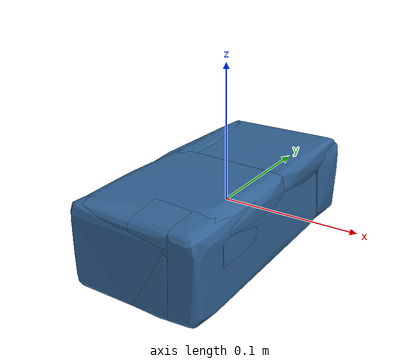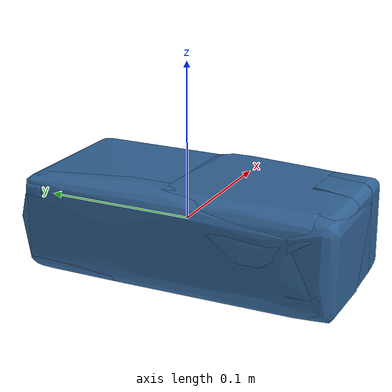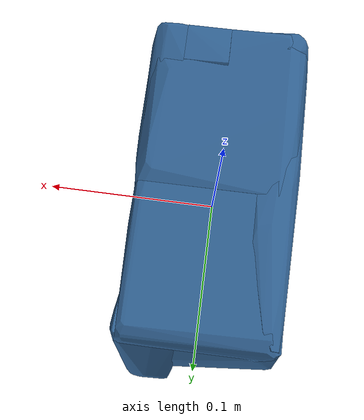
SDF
<?xml version='1.0' encoding='UTF-8'?>
<!-- This SDF was autogenerated by obj_to_drake_sdf.py -->
<sdf version="1.7">
  <model name="chicken_broth">
    <link name="chicken_broth">
      <inertial>
        <pose>0 0 0 0 0 0</pose>
        <mass>0.05</mass>
        <inertia>
          <ixx>0.0001963192</ixx>
          <iyy>6.5404985e-05</iyy>
          <izz>0.00022122943</izz>
          <ixy>-2.8760481e-07</ixy>
          <ixz>4.9587641e-07</ixz>
          <iyz>2.6570415e-06</iyz>
        </inertia>
      </inertial>
      <visual name="convex_0">
        <pose>0 0 0 0 0 0</pose>
        <geometry>
          <mesh>
            <uri>chicken_broth_convex_0.obj</uri>
          </mesh>
        </geometry>
        <material>
          <diffuse>0.19607843137254902 0.39215686274509803 0.5882352941176471 1</diffuse>
        </material>
      </visual>
      <collision name="convex_0_volume">
        <pose>0 0 0 0 0 0</pose>
        <geometry>
          <mesh>
            <uri>chicken_broth_convex_0.obj</uri>
          </mesh>
        </geometry>
        <drake:proximity_properties xmlns:drake="uri:drake">
          <drake:compliant_hydroelastic/>
          <drake:hydroelastic_modulus> 3.0e7 </drake:hydroelastic_modulus>
          <drake:mesh_resolution_hint> 0.02 </drake:mesh_resolution_hint>
          <drake:hunt_crossley_dissipation>10</drake:hunt_crossley_dissipation>
          <drake:mu_dynamic>0.3</drake:mu_dynamic>
        </drake:proximity_properties>
      </collision>
      <visual name="convex_1">
        <pose>0 0 0 0 0 0</pose>
        <geometry>
          <mesh>
            <uri>chicken_broth_convex_1.obj</uri>
          </mesh>
        </geometry>
        <material>
          <diffuse>0.19607843137254902 0.39215686274509803 0.5882352941176471 1</diffuse>
        </material>
      </visual>
      <collision name="convex_1_volume">
        <pose>0 0 0 0 0 0</pose>
        <geometry>
          <mesh>
            <uri>chicken_broth_convex_1.obj</uri>
          </mesh>
        </geometry>
        <drake:proximity_properties xmlns:drake="uri:drake">
          <drake:compliant_hydroelastic/>
          <drake:hydroelastic_modulus> 3.0e7 </drake:hydroelastic_modulus>
          <drake:mesh_resolution_hint> 0.02 </drake:mesh_resolution_hint>
          <drake:hunt_crossley_dissipation>10</drake:hunt_crossley_dissipation>
          <drake:mu_dynamic>0.3</drake:mu_dynamic>
        </drake:proximity_properties>
      </collision>
      <visual name="convex_2">
        <pose>0 0 0 0 0 0</pose>
        <geometry>
          <mesh>
            <uri>chicken_broth_convex_2.obj</uri>
          </mesh>
        </geometry>
        <material>
          <diffuse>0.19607843137254902 0.39215686274509803 0.5882352941176471 1</diffuse>
        </material>
      </visual>
      <collision name="convex_2_volume">
        <pose>0 0 0 0 0 0</pose>
        <geometry>
          <mesh>
            <uri>chicken_broth_convex_2.obj</uri>
          </mesh>
        </geometry>
        <drake:proximity_properties xmlns:drake="uri:drake">
          <drake:compliant_hydroelastic/>
          <drake:hydroelastic_modulus> 3.0e7 </drake:hydroelastic_modulus>
          <drake:mesh_resolution_hint> 0.02 </drake:mesh_resolution_hint>
          <drake:hunt_crossley_dissipation>10</drake:hunt_crossley_dissipation>
          <drake:mu_dynamic>0.3</drake:mu_dynamic>
        </drake:proximity_properties>
      </collision>
      <visual name="convex_3">
        <pose>0 0 0 0 0 0</pose>
        <geometry>
          <mesh>
            <uri>chicken_broth_convex_3.obj</uri>
          </mesh>
        </geometry>
        <material>
          <diffuse>0.19607843137254902 0.39215686274509803 0.5882352941176471 1</diffuse>
        </material>
      </visual>
      <collision name="convex_3_volume">
        <pose>0 0 0 0 0 0</pose>
        <geometry>
          <mesh>
            <uri>chicken_broth_convex_3.obj</uri>
          </mesh>
        </geometry>
        <drake:proximity_properties xmlns:drake="uri:drake">
          <drake:compliant_hydroelastic/>
          <drake:hydroelastic_modulus> 3.0e7 </drake:hydroelastic_modulus>
          <drake:mesh_resolution_hint> 0.02 </drake:mesh_resolution_hint>
          <drake:hunt_crossley_dissipation>10</drake:hunt_crossley_dissipation>
          <drake:mu_dynamic>0.3</drake:mu_dynamic>
        </drake:proximity_properties>
      </collision>
      <visual name="convex_4">
        <pose>0 0 0 0 0 0</pose>
        <geometry>
          <mesh>
            <uri>chicken_broth_convex_4.obj</uri>
          </mesh>
        </geometry>
        <material>
          <diffuse>0.19607843137254902 0.39215686274509803 0.5882352941176471 1</diffuse>
        </material>
      </visual>
      <collision name="convex_4_volume">
        <pose>0 0 0 0 0 0</pose>
        <geometry>
          <mesh>
            <uri>chicken_broth_convex_4.obj</uri>
          </mesh>
        </geometry>
        <drake:proximity_properties xmlns:drake="uri:drake">
          <drake:compliant_hydroelastic/>
          <drake:hydroelastic_modulus> 3.0e7 </drake:hydroelastic_modulus>
          <drake:mesh_resolution_hint> 0.02 </drake:mesh_resolution_hint>
          <drake:hunt_crossley_dissipation>10</drake:hunt_crossley_dissipation>
          <drake:mu_dynamic>0.3</drake:mu_dynamic>
        </drake:proximity_properties>
      </collision>
      <visual name="convex_5">
        <pose>0 0 0 0 0 0</pose>
        <geometry>
          <mesh>
            <uri>chicken_broth_convex_5.obj</uri>
          </mesh>
        </geometry>
        <material>
          <diffuse>0.19607843137254902 0.39215686274509803 0.5882352941176471 1</diffuse>
        </material>
      </visual>
      <collision name="convex_5_volume">
        <pose>0 0 0 0 0 0</pose>
        <geometry>
          <mesh>
            <uri>chicken_broth_convex_5.obj</uri>
          </mesh>
        </geometry>
        <drake:proximity_properties xmlns:drake="uri:drake">
          <drake:compliant_hydroelastic/>
          <drake:hydroelastic_modulus> 3.0e7 </drake:hydroelastic_modulus>
          <drake:mesh_resolution_hint> 0.02 </drake:mesh_resolution_hint>
          <drake:hunt_crossley_dissipation>10</drake:hunt_crossley_dissipation>
          <drake:mu_dynamic>0.3</drake:mu_dynamic>
        </drake:proximity_properties>
      </collision>
      <visual name="convex_6">
        <pose>0 0 0 0 0 0</pose>
        <geometry>
          <mesh>
            <uri>chicken_broth_convex_6.obj</uri>
          </mesh>
        </geometry>
        <material>
          <diffuse>0.19607843137254902 0.39215686274509803 0.5882352941176471 1</diffuse>
        </material>
      </visual>
      <collision name="convex_6_volume">
        <pose>0 0 0 0 0 0</pose>
        <geometry>
          <mesh>
            <uri>chicken_broth_convex_6.obj</uri>
          </mesh>
        </geometry>
        <drake:proximity_properties xmlns:drake="uri:drake">
          <drake:compliant_hydroelastic/>
          <drake:hydroelastic_modulus> 3.0e7 </drake:hydroelastic_modulus>
          <drake:mesh_resolution_hint> 0.02 </drake:mesh_resolution_hint>
          <drake:hunt_crossley_dissipation>10</drake:hunt_crossley_dissipation>
          <drake:mu_dynamic>0.3</drake:mu_dynamic>
        </drake:proximity_properties>
      </collision>
      <visual name="convex_7">
        <pose>0 0 0 0 0 0</pose>
        <geometry>
          <mesh>
            <uri>chicken_broth_convex_7.obj</uri>
          </mesh>
        </geometry>
        <material>
          <diffuse>0.19607843137254902 0.39215686274509803 0.5882352941176471 1</diffuse>
        </material>
      </visual>
      <collision name="convex_7_volume">
        <pose>0 0 0 0 0 0</pose>
        <geometry>
          <mesh>
            <uri>chicken_broth_convex_7.obj</uri>
          </mesh>
        </geometry>
        <drake:proximity_properties xmlns:drake="uri:drake">
          <drake:compliant_hydroelastic/>
          <drake:hydroelastic_modulus> 3.0e7 </drake:hydroelastic_modulus>
          <drake:mesh_resolution_hint> 0.02 </drake:mesh_resolution_hint>
          <drake:hunt_crossley_dissipation>10</drake:hunt_crossley_dissipation>
          <drake:mu_dynamic>0.3</drake:mu_dynamic>
        </drake:proximity_properties>
      </collision>
      <visual name="convex_8">
        <pose>0 0 0 0 0 0</pose>
        <geometry>
          <mesh>
            <uri>chicken_broth_convex_8.obj</uri>
          </mesh>
        </geometry>
        <material>
          <diffuse>0.19607843137254902 0.39215686274509803 0.5882352941176471 1</diffuse>
        </material>
      </visual>
      <collision name="convex_8_volume">
        <pose>0 0 0 0 0 0</pose>
        <geometry>
          <mesh>
            <uri>chicken_broth_convex_8.obj</uri>
          </mesh>
        </geometry>
        <drake:proximity_properties xmlns:drake="uri:drake">
          <drake:compliant_hydroelastic/>
          <drake:hydroelastic_modulus> 3.0e7 </drake:hydroelastic_modulus>
          <drake:mesh_resolution_hint> 0.02 </drake:mesh_resolution_hint>
          <drake:hunt_crossley_dissipation>10</drake:hunt_crossley_dissipation>
          <drake:mu_dynamic>0.3</drake:mu_dynamic>
        </drake:proximity_properties>
      </collision>
      <visual name="convex_9">
        <pose>0 0 0 0 0 0</pose>
        <geometry>
          <mesh>
            <uri>chicken_broth_convex_9.obj</uri>
          </mesh>
        </geometry>
        <material>
          <diffuse>0.19607843137254902 0.39215686274509803 0.5882352941176471 1</diffuse>
        </material>
      </visual>
      <collision name="convex_9_volume">
        <pose>0 0 0 0 0 0</pose>
        <geometry>
          <mesh>
            <uri>chicken_broth_convex_9.obj</uri>
          </mesh>
        </geometry>
        <drake:proximity_properties xmlns:drake="uri:drake">
          <drake:compliant_hydroelastic/>
          <drake:hydroelastic_modulus> 3.0e7 </drake:hydroelastic_modulus>
          <drake:mesh_resolution_hint> 0.02 </drake:mesh_resolution_hint>
          <drake:hunt_crossley_dissipation>10</drake:hunt_crossley_dissipation>
          <drake:mu_dynamic>0.3</drake:mu_dynamic>
        </drake:proximity_properties>
      </collision>
    </link>
  </model>
</sdf>
